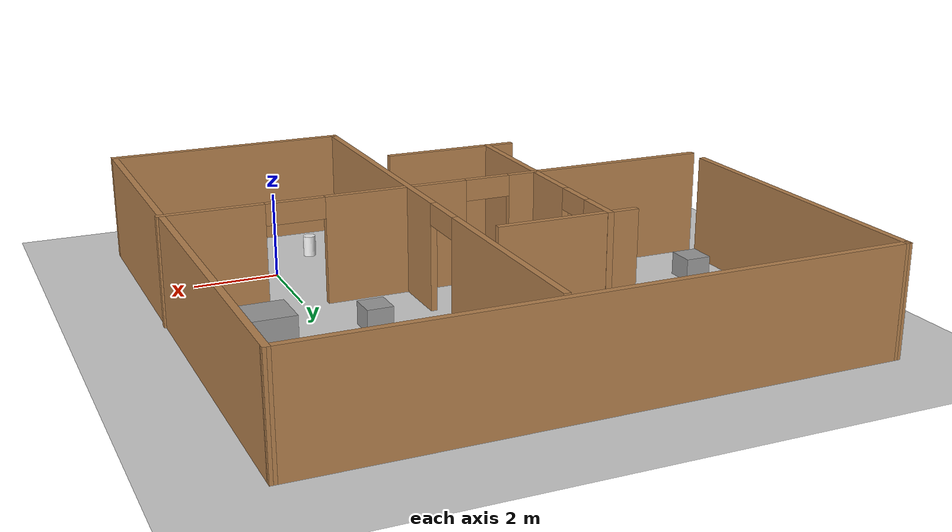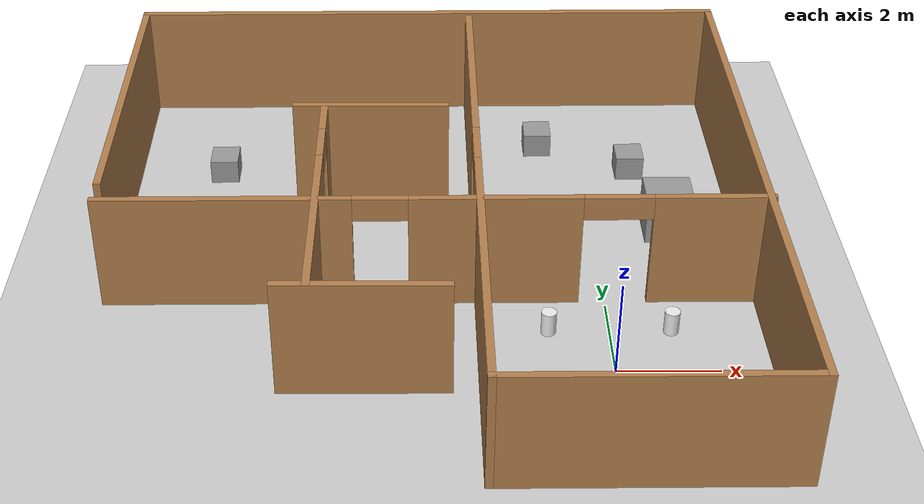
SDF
<sdf version="1.6">
 <world name="default">
  <light name="sun" type="directional">
   <pose>0 0 10 0 -0 0</pose>
   <diffuse>0.8 0.8 0.8 1</diffuse>
   <specular>0.2 0.2 0.2 1</specular>
   <attenuation>
    <range>1000</range>
    <constant>0.9</constant>
    <linear>0.01</linear>
    <quadratic>0.001</quadratic>
   </attenuation>
   <direction>-0.5 0.1 -0.9</direction>
  </light>
  <model name="ground_plane">
   <static>1</static>
   <link name="link">
    <collision name="collision">
     <geometry><plane><normal>0 0 1</normal><size>100 100</size></plane></geometry>
     <surface><friction><ode><mu>100</mu><mu2>50</mu2></ode></friction></surface>
    </collision>
    <visual name="visual">
     <cast_shadows>0</cast_shadows>
     <geometry><plane><normal>0 0 1</normal><size>100 100</size></plane></geometry>
     <material>
      <script><uri>file://media/materials/scripts/gazebo.material</uri><name>Gazebo/Grey</name></script>
     </material>
    </visual>
   </link>
  </model>
  <model name="obstacle">
   <pose>0 -0 -2e-06 2e-06 -0 0</pose>
   <link name="obstacle">
    <collision name="obstacle_1">
     <pose>-1.2 -1.2 0.25 0 -0 0</pose>
     <geometry><cylinder><radius>0.15</radius><length>0.5</length></cylinder></geometry>
    </collision>
    <visual name="obstacle_1">
     <pose>-1.2 -1.2 0.25 0 -0 0</pose>
     <geometry><cylinder><radius>0.15</radius><length>0.5</length></cylinder></geometry>
     <material>
      <script><uri>file://media/materials/scripts/gazebo.material</uri><name>Gazebo/White</name></script>
     </material>
    </visual>
    <collision name="obstacle_2">
     <pose>-1.2 1.2 0.25 0 -0 0</pose>
     <geometry><cylinder><radius>0.15</radius><length>0.5</length></cylinder></geometry>
    </collision>
    <visual name="obstacle_2">
     <pose>-1.2 1.2 0.25 0 -0 0</pose>
     <geometry><cylinder><radius>0.15</radius><length>0.5</length></cylinder></geometry>
     <material>
      <script><uri>file://media/materials/scripts/gazebo.material</uri><name>Gazebo/White</name></script>
     </material>
    </visual>
    <collision name="obstacle_3">
     <pose>1.2 -1.2 0.25 0 -0 0</pose>
     <geometry><cylinder><radius>0.15</radius><length>0.5</length></cylinder></geometry>
    </collision>
    <visual name="obstacle_3">
     <pose>1.2 -1.2 0.25 0 -0 0</pose>
     <geometry><cylinder><radius>0.15</radius><length>0.5</length></cylinder></geometry>
     <material>
      <script><uri>file://media/materials/scripts/gazebo.material</uri><name>Gazebo/White</name></script>
     </material>
    </visual>
    <collision name="obstacle_4">
     <pose>1.2 1.2 0.25 0 -0 0</pose>
     <geometry><cylinder><radius>0.15</radius><length>0.5</length></cylinder></geometry>
    </collision>
    <visual name="obstacle_4">
     <pose>1.2 1.2 0.25 0 -0 0</pose>
     <geometry><cylinder><radius>0.15</radius><length>0.5</length></cylinder></geometry>
     <material>
      <script><uri>file://media/materials/scripts/gazebo.material</uri><name>Gazebo/White</name></script>
     </material>
    </visual>
    <inertial>
     <inertia><ixx>1</ixx><ixy>0</ixy><ixz>0</ixz><iyy>1</iyy><iyz>0</iyz><izz>1</izz></inertia>
     <mass>1</mass>
    </inertial>
   </link>
  </model>
  <physics name="default_physics" default="0" type="ode">
   <real_time_update_rate>100</real_time_update_rate>
   <max_step_size>0.01</max_step_size>
   <real_time_factor>1</real_time_factor>
   <ode>
    <solver>
     <type>quick</type>
     <iters>150</iters>
     <precon_iters>0</precon_iters>
     <sor>1.4</sor>
     <use_dynamic_moi_rescaling>1</use_dynamic_moi_rescaling>
    </solver>
    <constraints>
     <cfm>1e-05</cfm>
     <erp>0.2</erp>
     <contact_max_correcting_vel>2000</contact_max_correcting_vel>
     <contact_surface_layer>0.01</contact_surface_layer>
    </constraints>
   </ode>
  </physics>
  <gravity>0 0 -9.8</gravity>
  <magnetic_field>6e-06 2.3e-05 -4.2e-05</magnetic_field>
  <atmosphere type="adiabatic"/>
  <scene><ambient>0.4 0.4 0.4 1</ambient><background>0.7 0.7 0.7 1</background><shadows>0</shadows></scene>
  <spherical_coordinates>
   <surface_model>EARTH_WGS84</surface_model>
   <latitude_deg>0</latitude_deg>
   <longitude_deg>0</longitude_deg>
   <elevation>0</elevation>
   <heading_deg>0</heading_deg>
  </spherical_coordinates>
  <model name="robot_house">
   <pose>-3.46004 3.51167 0 0 -0 0</pose>
   <link name="Wall_0">
    <collision name="Wall_0_Collision">
     <geometry><box><size>13.25 0.15 2.5</size></box></geometry>
     <pose>0 0 1.25 0 -0 0</pose>
    </collision>
    <visual name="Wall_0_Visual">
     <pose>0 0 1.25 0 -0 0</pose>
     <geometry><box><size>13.25 0.15 2.5</size></box></geometry>
     <material>
      <script><uri>file://media/materials/scripts/gazebo.material</uri><name>Gazebo/Wood</name></script>
      <ambient>1 1 1 1</ambient>
     </material>
     <meta><layer>0</layer></meta>
    </visual>
    <pose>-0.022762 6.53843 0 0 -0 0.001756</pose>
   </link>
   <link name="Wall_1">
    <collision name="Wall_1_Collision">
     <geometry><box><size>13.25 0.15 2.5</size></box></geometry>
     <pose>0 0 1.25 0 -0 0</pose>
    </collision>
    <visual name="Wall_1_Visual">
     <pose>0 0 1.25 0 -0 0</pose>
     <geometry><box><size>13.25 0.15 2.5</size></box></geometry>
     <material>
      <script><uri>file://media/materials/scripts/gazebo.material</uri><name>Gazebo/Wood</name></script>
      <ambient>1 1 1 1</ambient>
     </material>
     <meta><layer>0</layer></meta>
    </visual>
    <pose>6.52724 -6.5e-05 0 0 -0 -1.5708</pose>
   </link>
   <link name="Wall_10">
    <collision name="Wall_10_Collision">
     <geometry><box><size>3.29635 0.15 2.5</size></box></geometry>
     <pose>0 0 1.25 0 -0 0</pose>
    </collision>
    <visual name="Wall_10_Visual">
     <pose>0 0 1.25 0 -0 0</pose>
     <geometry><box><size>3.29635 0.15 2.5</size></box></geometry>
     <material>
      <script><uri>file://media/materials/scripts/gazebo.material</uri><name>Gazebo/Wood</name></script>
      <ambient>0.921569 0.807843 1.21569 1</ambient>
     </material>
     <meta><layer>0</layer></meta>
    </visual>
    <pose>-1.25876 2.27543 0 0 -0 3.13428</pose>
   </link>
   <link name="Wall_11">
    <pose>-2.25476 -0.867065 0 0 -0 -1.57809</pose>
    <visual name="Wall_11_Visual_0">
     <pose>-2.68482 0 1.25 0 -0 0</pose>
     <geometry><box><size>1.08854 0.15 2.5</size></box></geometry>
     <material>
      <script><uri>file://media/materials/scripts/gazebo.material</uri><name>Gazebo/Wood</name></script>
      <ambient>1 1 1 1</ambient>
     </material>
     <meta><layer>0</layer></meta>
    </visual>
    <collision name="Wall_11_Collision_0">
     <geometry><box><size>1.08854 0.15 2.5</size></box></geometry>
     <pose>-2.68482 0 1.25 0 -0 0</pose>
    </collision>
    <visual name="Wall_11_Visual_1">
     <pose>1.0518 0 1.25 0 -0 0</pose>
     <geometry><box><size>4.35458 0.15 2.5</size></box></geometry>
     <material>
      <script><uri>file://media/materials/scripts/gazebo.material</uri><name>Gazebo/Wood</name></script>
      <ambient>1 1 1 1</ambient>
     </material>
     <meta><layer>0</layer></meta>
    </visual>
    <collision name="Wall_11_Collision_1">
     <geometry><box><size>4.35458 0.15 2.5</size></box></geometry>
     <pose>1.0518 0 1.25 0 -0 0</pose>
    </collision>
    <visual name="Wall_11_Visual_2">
     <pose>-1.63302 0 2.25 0 -0 0</pose>
     <geometry><box><size>1.01506 0.15 0.5</size></box></geometry>
     <material>
      <script><uri>file://media/materials/scripts/gazebo.material</uri><name>Gazebo/Wood</name></script>
      <ambient>1 1 1 1</ambient>
     </material>
     <meta><layer>0</layer></meta>
    </visual>
    <collision name="Wall_11_Collision_2">
     <geometry><box><size>1.01506 0.15 0.5</size></box></geometry>
     <pose>-1.63302 0 2.25 0 -0 0</pose>
    </collision>
   </link>
   <link name="Wall_12">
    <collision name="Wall_12_Collision">
     <geometry><box><size>3.3191 0.15 2.5</size></box></geometry>
     <pose>0 0 1.25 0 -0 0</pose>
    </collision>
    <visual name="Wall_12_Visual">
     <pose>0 0 1.25 0 -0 0</pose>
     <geometry><box><size>3.3191 0.15 2.5</size></box></geometry>
     <material>
      <script><uri>file://media/materials/scripts/gazebo.material</uri><name>Gazebo/Wood</name></script>
      <ambient>1 1 1 1</ambient>
     </material>
     <meta><layer>0</layer></meta>
    </visual>
    <pose>-1.29326 -4.03256 0 0 -0 -0.007258</pose>
   </link>
   <link name="Wall_2">
    <collision name="Wall_2_Collision">
     <geometry><box><size>5.75 0.15 2.5</size></box></geometry>
     <pose>0 0 1.25 0 -0 0</pose>
    </collision>
    <visual name="Wall_2_Visual">
     <pose>0 0 1.25 0 -0 0</pose>
     <geometry><box><size>5.75 0.15 2.5</size></box></geometry>
     <material>
      <script><uri>file://media/materials/scripts/gazebo.material</uri><name>Gazebo/Wood</name></script>
      <ambient>1 1 1 1</ambient>
     </material>
     <meta><layer>0</layer></meta>
    </visual>
    <pose>3.72724 -6.55007 0 0 -0 3.14159</pose>
   </link>
   <link name="Wall_4">
    <pose>0.927238 -0.125065 0 0 -0 1.5708</pose>
    <visual name="Wall_4_Visual_0">
     <pose>-3.10749 0 1.25 0 -0 0</pose>
     <geometry><box><size>6.78502 0.15 2.5</size></box></geometry>
     <material>
      <script><uri>file://media/materials/scripts/gazebo.material</uri><name>Gazebo/Wood</name></script>
      <ambient>1 1 1 1</ambient>
     </material>
     <meta><layer>0</layer></meta>
    </visual>
    <collision name="Wall_4_Collision_0">
     <geometry><box><size>6.78502 0.15 2.5</size></box></geometry>
     <pose>-3.10749 0 1.25 0 -0 0</pose>
    </collision>
    <visual name="Wall_4_Visual_1">
     <pose>3.96973 0 1.25 0 -0 0</pose>
     <geometry><box><size>5.06055 0.15 2.5</size></box></geometry>
     <material>
      <script><uri>file://media/materials/scripts/gazebo.material</uri><name>Gazebo/Wood</name></script>
      <ambient>1 1 1 1</ambient>
     </material>
     <meta><layer>0</layer></meta>
    </visual>
    <collision name="Wall_4_Collision_1">
     <geometry><box><size>5.06055 0.15 2.5</size></box></geometry>
     <pose>3.96973 0 1.25 0 -0 0</pose>
    </collision>
    <visual name="Wall_4_Visual_2">
     <pose>0.862237 0 2.25 0 -0 0</pose>
     <geometry><box><size>1.15444 0.15 0.5</size></box></geometry>
     <material>
      <script><uri>file://media/materials/scripts/gazebo.material</uri><name>Gazebo/Wood</name></script>
      <ambient>1 1 1 1</ambient>
     </material>
     <meta><layer>0</layer></meta>
    </visual>
    <collision name="Wall_4_Collision_2">
     <geometry><box><size>1.15444 0.15 0.5</size></box></geometry>
     <pose>0.862237 0 2.25 0 -0 0</pose>
    </collision>
   </link>
   <link name="Wall_6">
    <collision name="Wall_6_Collision">
     <geometry><box><size>7.36615 0.15 2.5</size></box></geometry>
     <pose>0 0 1.25 0 -0 0</pose>
    </collision>
    <visual name="Wall_6_Visual">
     <pose>0 0 1.25 0 -0 0</pose>
     <geometry><box><size>7.36615 0.15 2.5</size></box></geometry>
     <material>
      <script><uri>file://media/materials/scripts/gazebo.material</uri><name>Gazebo/Wood</name></script>
      <ambient>1 1 1 1</ambient>
     </material>
     <meta><layer>0</layer></meta>
    </visual>
    <pose>-6.54976 2.91893 0 0 -0 -1.56442</pose>
   </link>
   <link name="Wall_8">
    <pose>0.023238 -1.28906 0 0 -0 0</pose>
    <visual name="Wall_8_Visual_0">
     <pose>-4.0982 0 1.25 0 -0 0</pose>
     <geometry><box><size>5.0536 0.15 2.5</size></box></geometry>
     <material>
      <script><uri>file://media/materials/scripts/gazebo.material</uri><name>Gazebo/Wood</name></script>
      <ambient>1 1 1 1</ambient>
     </material>
     <meta><layer>0</layer></meta>
    </visual>
    <collision name="Wall_8_Collision_0">
     <geometry><box><size>5.0536 0.15 2.5</size></box></geometry>
     <pose>-4.0982 0 1.25 0 -0 0</pose>
    </collision>
    <visual name="Wall_8_Visual_1">
     <pose>1.20897 0 1.25 0 -0 0</pose>
     <geometry><box><size>3.39075 0.15 2.5</size></box></geometry>
     <material>
      <script><uri>file://media/materials/scripts/gazebo.material</uri><name>Gazebo/Wood</name></script>
      <ambient>1 1 1 1</ambient>
     </material>
     <meta><layer>0</layer></meta>
    </visual>
    <collision name="Wall_8_Collision_1">
     <geometry><box><size>3.39075 0.15 2.5</size></box></geometry>
     <pose>1.20897 0 1.25 0 -0 0</pose>
    </collision>
    <visual name="Wall_8_Visual_2">
     <pose>5.44598 0 1.25 0 -0 0</pose>
     <geometry><box><size>2.35804 0.15 2.5</size></box></geometry>
     <material>
      <script><uri>file://media/materials/scripts/gazebo.material</uri><name>Gazebo/Wood</name></script>
      <ambient>1 1 1 1</ambient>
     </material>
     <meta><layer>0</layer></meta>
    </visual>
    <collision name="Wall_8_Collision_2">
     <geometry><box><size>2.35804 0.15 2.5</size></box></geometry>
     <pose>5.44598 0 1.25 0 -0 0</pose>
    </collision>
    <visual name="Wall_8_Visual_3">
     <pose>-1.0289 0 2.25 0 -0 0</pose>
     <geometry><box><size>1.085 0.15 0.5</size></box></geometry>
     <material>
      <script><uri>file://media/materials/scripts/gazebo.material</uri><name>Gazebo/Wood</name></script>
      <ambient>1 1 1 1</ambient>
     </material>
     <meta><layer>0</layer></meta>
    </visual>
    <collision name="Wall_8_Collision_3">
     <geometry><box><size>1.085 0.15 0.5</size></box></geometry>
     <pose>-1.0289 0 2.25 0 -0 0</pose>
    </collision>
    <visual name="Wall_8_Visual_4">
     <pose>3.58566 0 2.25 0 -0 0</pose>
     <geometry><box><size>1.36261 0.15 0.5</size></box></geometry>
     <material>
      <script><uri>file://media/materials/scripts/gazebo.material</uri><name>Gazebo/Wood</name></script>
      <ambient>1 1 1 1</ambient>
     </material>
     <meta><layer>0</layer></meta>
    </visual>
    <collision name="Wall_8_Collision_4">
     <geometry><box><size>1.36261 0.15 0.5</size></box></geometry>
     <pose>3.58566 0 2.25 0 -0 0</pose>
    </collision>
   </link>
   <static>1</static>
  </model>
  <model name="unit_box">
   <pose>1.56151 4.71944 0.499999 0 -0 0</pose>
   <link name="link">
    <inertial>
     <mass>1</mass>
     <inertia>
      <ixx>0.166667</ixx>
      <ixy>0</ixy>
      <ixz>0</ixz>
      <iyy>0.166667</iyy>
      <iyz>0</iyz>
      <izz>0.166667</izz>
     </inertia>
    </inertial>
    <collision name="collision"><geometry><box><size>1 1 0.999997</size></box></geometry></collision>
    <visual name="visual">
     <geometry><box><size>1 1 0.999997</size></box></geometry>
     <material>
      <script><name>Gazebo/Grey</name><uri>file://media/materials/scripts/gazebo.material</uri></script>
     </material>
    </visual>
   </link>
  </model>
  <model name="unit_box_clone">
   <pose>-1.00289 8.00134 0.270503 0 -0 0</pose>
   <link name="link">
    <inertial>
     <mass>1</mass>
     <inertia>
      <ixx>0.166667</ixx>
      <ixy>0</ixy>
      <ixz>0</ixz>
      <iyy>0.166667</iyy>
      <iyz>0</iyz>
      <izz>0.166667</izz>
     </inertia>
    </inertial>
    <collision name="collision"><geometry><box><size>0.608329 0.64996 0.541007</size></box></geometry></collision>
    <visual name="visual">
     <geometry><box><size>0.608329 0.64996 0.541007</size></box></geometry>
     <material>
      <script><name>Gazebo/Grey</name><uri>file://media/materials/scripts/gazebo.material</uri></script>
     </material>
    </visual>
   </link>
  </model>
  <model name="unit_box_clone_0">
   <pose>-0.995755 4.07114 0.270503 0 -0 0</pose>
   <link name="link">
    <inertial>
     <mass>1</mass>
     <inertia>
      <ixx>0.166667</ixx>
      <ixy>0</ixy>
      <ixz>0</ixz>
      <iyy>0.166667</iyy>
      <iyz>0</iyz>
      <izz>0.166667</izz>
     </inertia>
    </inertial>
    <collision name="collision"><geometry><box><size>0.608329 0.64996 0.541007</size></box></geometry></collision>
    <visual name="visual">
     <geometry><box><size>0.608329 0.64996 0.541007</size></box></geometry>
     <material>
      <script><name>Gazebo/Grey</name><uri>file://media/materials/scripts/gazebo.material</uri></script>
     </material>
    </visual>
   </link>
  </model>
  <model name="unit_box_clone_1">
   <pose>1 7 0.270503 0 -0 0</pose>
   <link name="link">
    <inertial>
     <mass>1</mass>
     <inertia>
      <ixx>0.166667</ixx>
      <ixy>0</ixy>
      <ixz>0</ixz>
      <iyy>0.166667</iyy>
      <iyz>0</iyz>
      <izz>0.166667</izz>
     </inertia>
    </inertial>
    <collision name="collision"><geometry><box><size>0.608329 0.64996 0.541007</size></box></geometry></collision>
    <visual name="visual">
     <geometry><box><size>0.608329 0.64996 0.541007</size></box></geometry>
     <material>
      <script><name>Gazebo/Grey</name><uri>file://media/materials/scripts/gazebo.material</uri></script>
     </material>
    </visual>
   </link>
  </model>
  <model name="unit_box_clone_2">
   <pose>-4.05656 0.96324 0.270503 0 -0 0</pose>
   <link name="link">
    <inertial>
     <mass>1</mass>
     <inertia>
      <ixx>0.166667</ixx>
      <ixy>0</ixy>
      <ixz>0</ixz>
      <iyy>0.166667</iyy>
      <iyz>0</iyz>
      <izz>0.166667</izz>
     </inertia>
    </inertial>
    <collision name="collision"><geometry><box><size>0.608329 0.64996 0.541007</size></box></geometry></collision>
    <visual name="visual">
     <geometry><box><size>0.608329 0.64996 0.541007</size></box></geometry>
     <material>
      <script><name>Gazebo/Grey</name><uri>file://media/materials/scripts/gazebo.material</uri></script>
     </material>
    </visual>
   </link>
  </model>
  <model name="unit_box_clone_3">
   <pose>-9 4 0.270503 0 -0 0</pose>
   <link name="link">
    <inertial>
     <mass>1</mass>
     <inertia>
      <ixx>0.166667</ixx>
      <ixy>0</ixy>
      <ixz>0</ixz>
      <iyy>0.166667</iyy>
      <iyz>0</iyz>
      <izz>0.166667</izz>
     </inertia>
    </inertial>
    <collision name="collision"><geometry><box><size>0.608329 0.64996 0.541007</size></box></geometry></collision>
    <visual name="visual">
     <geometry><box><size>0.608329 0.64996 0.541007</size></box></geometry>
     <material>
      <script><name>Gazebo/Grey</name><uri>file://media/materials/scripts/gazebo.material</uri></script>
     </material>
    </visual>
   </link>
  </model>
  <model name="unit_box_clone_4">
   <pose>-8.04169 6.95977 0.270503 0 -0 0</pose>
   <link name="link">
    <inertial>
     <mass>1</mass>
     <inertia>
      <ixx>0.166667</ixx>
      <ixy>0</ixy>
      <ixz>0</ixz>
      <iyy>0.166667</iyy>
      <iyz>0</iyz>
      <izz>0.166667</izz>
     </inertia>
    </inertial>
    <collision name="collision"><geometry><box><size>0.608329 0.64996 0.541007</size></box></geometry></collision>
    <visual name="visual">
     <geometry><box><size>0.608329 0.64996 0.541007</size></box></geometry>
     <material>
      <script><name>Gazebo/Grey</name><uri>file://media/materials/scripts/gazebo.material</uri></script>
     </material>
    </visual>
   </link>
  </model>
  <model name="unit_box_clone_5">
   <pose>-6.05843 8.0025 0.270503 0 -0 0</pose>
   <link name="link">
    <inertial>
     <mass>1</mass>
     <inertia>
      <ixx>0.166667</ixx>
      <ixy>0</ixy>
      <ixz>0</ixz>
      <iyy>0.166667</iyy>
      <iyz>0</iyz>
      <izz>0.166667</izz>
     </inertia>
    </inertial>
    <collision name="collision"><geometry><box><size>0.608329 0.64996 0.541007</size></box></geometry></collision>
    <visual name="visual">
     <geometry><box><size>0.608329 0.64996 0.541007</size></box></geometry>
     <material>
      <script><name>Gazebo/Grey</name><uri>file://media/materials/scripts/gazebo.material</uri></script>
     </material>
    </visual>
   </link>
  </model>
  <model name="unit_box_clone_6">
   <pose>0 -2.18435 0.270503 0 -0 0</pose>
   <link name="link">
    <inertial>
     <mass>1</mass>
     <inertia>
      <ixx>0.166667</ixx>
      <ixy>0</ixy>
      <ixz>0</ixz>
      <iyy>0.166667</iyy>
      <iyz>0</iyz>
      <izz>0.166667</izz>
     </inertia>
    </inertial>
    <collision name="collision">
     <geometry><box><size>0.518014 0.427291 0.541007</size></box></geometry>
    </collision>
    <visual name="visual">
     <geometry><box><size>0.518014 0.427291 0.541007</size></box></geometry>
     <material>
      <script><name>Gazebo/Grey</name><uri>file://media/materials/scripts/gazebo.material</uri></script>
     </material>
    </visual>
   </link>
  </model>
 </world>
</sdf>
